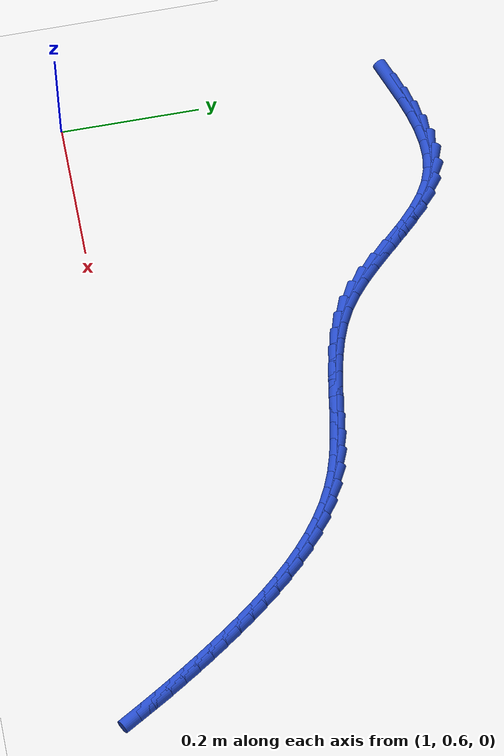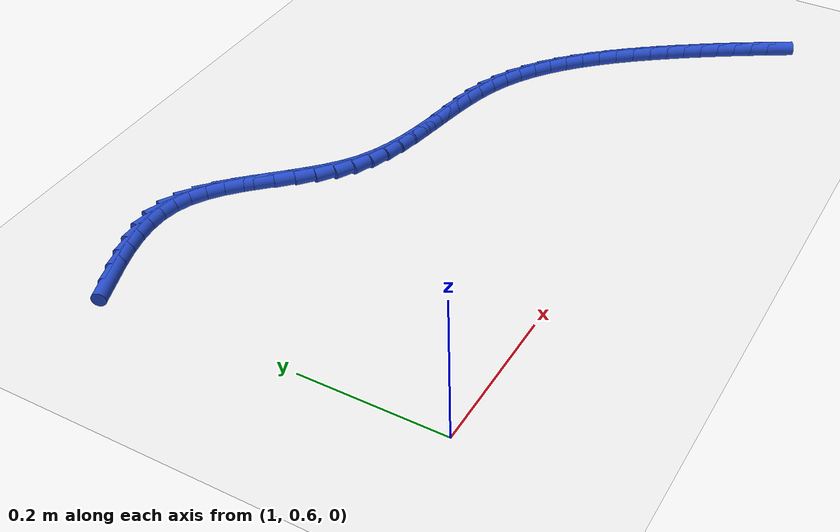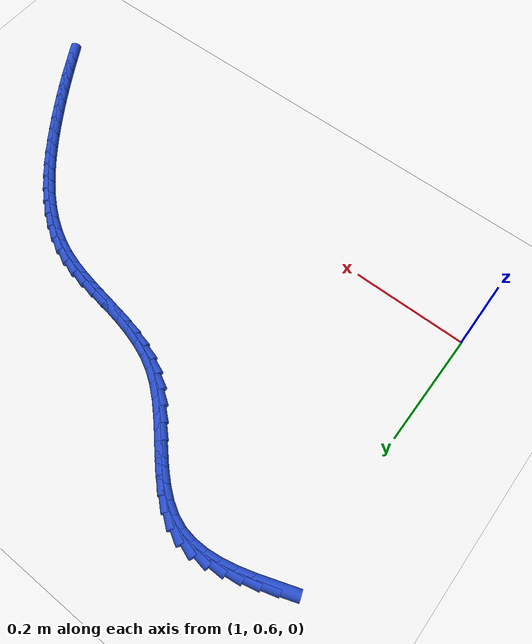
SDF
<sdf version="1.6">
 <world name="default">
  <model name="ground_plane">
   <static>1</static>
   <link name="link">
    <collision name="collision">
     <geometry><plane><normal>0 0 1</normal><size>100 100</size></plane></geometry>
     <surface><friction><ode><mu>100</mu><mu2>50</mu2></ode></friction></surface>
    </collision>
    <visual name="visual">
     <cast_shadows>0</cast_shadows>
     <geometry><plane><normal>0 0 1</normal><size>100 100</size></plane></geometry>
     <material>
      <script><uri>file://media/materials/scripts/gazebo.material</uri><name>Gazebo/WhiteGlow</name></script>
     </material>
    </visual>
   </link>
  </model>
  <model name="line">
   <link name="link_64">
    <pose>1.0182923211491122 1.0835292956726101 0.01 0 1.57 0.3456698950445351</pose>
    <collision name="collision">
     <geometry><cylinder><radius>0.01</radius><length>0.08</length></cylinder></geometry>
    </collision>
    <visual name="visual">
     <material>
      <script><name>Gazebo/Blue</name><uri>file://media/materials/scripts/gazebo.material</uri></script>
     </material>
     <geometry><cylinder><radius>0.01</radius><length>0.08</length></cylinder></geometry>
    </visual>
   </link>
   <link name="link_65">
    <pose>1.0442823852947185 1.0928890749901967 0.01 0 1.57 0.29696353346140586</pose>
    <collision name="collision">
     <geometry><cylinder><radius>0.01</radius><length>0.08</length></cylinder></geometry>
    </collision>
    <visual name="visual">
     <material>
      <script><name>Gazebo/Blue</name><uri>file://media/materials/scripts/gazebo.material</uri></script>
     </material>
     <geometry><cylinder><radius>0.01</radius><length>0.08</length></cylinder></geometry>
    </visual>
   </link>
   <link name="link_66">
    <pose>1.0700428076078006 1.1007720820701667 0.01 0 1.57 0.22657564463094484</pose>
    <collision name="collision">
     <geometry><cylinder><radius>0.01</radius><length>0.08</length></cylinder></geometry>
    </collision>
    <visual name="visual">
     <material>
      <script><name>Gazebo/Blue</name><uri>file://media/materials/scripts/gazebo.material</uri></script>
     </material>
     <geometry><cylinder><radius>0.01</radius><length>0.08</length></cylinder></geometry>
    </visual>
   </link>
   <link name="link_67">
    <pose>1.0953525608180354 1.1066068445860413 0.01 0 1.57 0.12975785164470752</pose>
    <collision name="collision">
     <geometry><cylinder><radius>0.01</radius><length>0.08</length></cylinder></geometry>
    </collision>
    <visual name="visual">
     <material>
      <script><name>Gazebo/Blue</name><uri>file://media/materials/scripts/gazebo.material</uri></script>
     </material>
     <geometry><cylinder><radius>0.01</radius><length>0.08</length></cylinder></geometry>
    </visual>
   </link>
   <link name="link_68">
    <pose>1.1199906176551 1.1098218902113446 0.01 0 1.57 0.001004677425764139</pose>
    <collision name="collision">
     <geometry><cylinder><radius>0.01</radius><length>0.08</length></cylinder></geometry>
    </collision>
    <visual name="visual">
     <material>
      <script><name>Gazebo/Blue</name><uri>file://media/materials/scripts/gazebo.material</uri></script>
     </material>
     <geometry><cylinder><radius>0.01</radius><length>0.08</length></cylinder></geometry>
    </visual>
   </link>
   <link name="link_69">
    <pose>1.1437359508486715 1.1098457466195981 0.01 0 1.57 -0.16372422563406325</pose>
    <collision name="collision">
     <geometry><cylinder><radius>0.01</radius><length>0.08</length></cylinder></geometry>
    </collision>
    <visual name="visual">
     <material>
      <script><name>Gazebo/Blue</name><uri>file://media/materials/scripts/gazebo.material</uri></script>
     </material>
     <geometry><cylinder><radius>0.01</radius><length>0.08</length></cylinder></geometry>
    </visual>
   </link>
   <link name="link_70">
    <pose>1.1663675331284278 1.1061069414843239 0.01 0 1.57 -0.35898097212196867</pose>
    <collision name="collision">
     <geometry><cylinder><radius>0.01</radius><length>0.08</length></cylinder></geometry>
    </collision>
    <visual name="visual">
     <material>
      <script><name>Gazebo/Blue</name><uri>file://media/materials/scripts/gazebo.material</uri></script>
     </material>
     <geometry><cylinder><radius>0.01</radius><length>0.08</length></cylinder></geometry>
    </visual>
   </link>
   <link name="link_71">
    <pose>1.1876910863482864 1.098105493624344 0.01 0 1.57 -0.5365407657694464</pose>
    <collision name="collision">
     <geometry><cylinder><radius>0.01</radius><length>0.08</length></cylinder></geometry>
    </collision>
    <visual name="visual">
     <material>
      <script><name>Gazebo/Blue</name><uri>file://media/materials/scripts/gazebo.material</uri></script>
     </material>
     <geometry><cylinder><radius>0.01</radius><length>0.08</length></cylinder></geometry>
    </visual>
   </link>
   <link name="link_72">
    <pose>1.2078109316426904 1.086139474323957 0.01 0 1.57 -0.667300120723335</pose>
    <collision name="collision">
     <geometry><cylinder><radius>0.01</radius><length>0.08</length></cylinder></geometry>
    </collision>
    <visual name="visual">
     <material>
      <script><name>Gazebo/Blue</name><uri>file://media/materials/scripts/gazebo.material</uri></script>
     </material>
     <geometry><cylinder><radius>0.01</radius><length>0.08</length></cylinder></geometry>
    </visual>
   </link>
   <link name="link_73">
    <pose>1.2270183240638377 1.0710065644903806 0.01 0 1.57 -0.7550719745141673</pose>
    <collision name="collision">
     <geometry><cylinder><radius>0.01</radius><length>0.08</length></cylinder></geometry>
    </collision>
    <visual name="visual">
     <material>
      <script><name>Gazebo/Blue</name><uri>file://media/materials/scripts/gazebo.material</uri></script>
     </material>
     <geometry><cylinder><radius>0.01</radius><length>0.08</length></cylinder></geometry>
    </visual>
   </link>
   <link name="link_74">
    <pose>1.2456073874216205 1.0535121122266344 0.01 0 1.57 -0.8064530137730368</pose>
    <collision name="collision">
     <geometry><cylinder><radius>0.01</radius><length>0.08</length></cylinder></geometry>
    </collision>
    <visual name="visual">
     <material>
      <script><name>Gazebo/Blue</name><uri>file://media/materials/scripts/gazebo.material</uri></script>
     </material>
     <geometry><cylinder><radius>0.01</radius><length>0.08</length></cylinder></geometry>
    </visual>
   </link>
   <link name="link_75">
    <pose>1.2638722455259312 1.034461465635738 0.01 0 1.57 -0.8265649506673421</pose>
    <collision name="collision">
     <geometry><cylinder><radius>0.01</radius><length>0.08</length></cylinder></geometry>
    </collision>
    <visual name="visual">
     <material>
      <script><name>Gazebo/Blue</name><uri>file://media/materials/scripts/gazebo.material</uri></script>
     </material>
     <geometry><cylinder><radius>0.01</radius><length>0.08</length></cylinder></geometry>
    </visual>
   </link>
   <link name="link_76">
    <pose>1.2821070221866606 1.0146599728207117 0.01 0 1.57 -0.8180221046899048</pose>
    <collision name="collision">
     <geometry><cylinder><radius>0.01</radius><length>0.08</length></cylinder></geometry>
    </collision>
    <visual name="visual">
     <material>
      <script><name>Gazebo/Blue</name><uri>file://media/materials/scripts/gazebo.material</uri></script>
     </material>
     <geometry><cylinder><radius>0.01</radius><length>0.08</length></cylinder></geometry>
    </visual>
   </link>
   <link name="link_77">
    <pose>1.3006058412137014 0.9949129818845748 0.01 0 1.57 -0.780922026195444</pose>
    <collision name="collision">
     <geometry><cylinder><radius>0.01</radius><length>0.08</length></cylinder></geometry>
    </collision>
    <visual name="visual">
     <material>
      <script><name>Gazebo/Blue</name><uri>file://media/materials/scripts/gazebo.material</uri></script>
     </material>
     <geometry><cylinder><radius>0.01</radius><length>0.08</length></cylinder></geometry>
    </visual>
   </link>
   <link name="link_78">
    <pose>1.3196628264169445 0.9760258409303462 0.01 0 1.57 -0.713150198434638</pose>
    <collision name="collision">
     <geometry><cylinder><radius>0.01</radius><length>0.08</length></cylinder></geometry>
    </collision>
    <visual name="visual">
     <material>
      <script><name>Gazebo/Blue</name><uri>file://media/materials/scripts/gazebo.material</uri></script>
     </material>
     <geometry><cylinder><radius>0.01</radius><length>0.08</length></cylinder></geometry>
    </visual>
   </link>
   <link name="link_79">
    <pose>1.3395721016062816 0.9588038980610462 0.01 0 1.57 -0.6111772853399418</pose>
    <collision name="collision">
     <geometry><cylinder><radius>0.01</radius><length>0.08</length></cylinder></geometry>
    </collision>
    <visual name="visual">
     <material>
      <script><name>Gazebo/Blue</name><uri>file://media/materials/scripts/gazebo.material</uri></script>
     </material>
     <geometry><cylinder><radius>0.01</radius><length>0.08</length></cylinder></geometry>
    </visual>
   </link>
   <link name="link_80">
    <pose>1.3606272464097968 0.9440511333073831 0.01 0 1.57 -0.4871068397696455</pose>
    <collision name="collision">
     <geometry><cylinder><radius>0.01</radius><length>0.08</length></cylinder></geometry>
    </collision>
    <visual name="visual">
     <material>
      <script><name>Gazebo/Blue</name><uri>file://media/materials/scripts/gazebo.material</uri></script>
     </material>
     <geometry><cylinder><radius>0.01</radius><length>0.08</length></cylinder></geometry>
    </visual>
   </link>
   <link name="link_81">
    <pose>1.3829788305830284 0.9322120000791534 0.01 0 1.57 -0.37809624471242004</pose>
    <collision name="collision">
     <geometry><cylinder><radius>0.01</radius><length>0.08</length></cylinder></geometry>
    </collision>
    <visual name="visual">
     <material>
      <script><name>Gazebo/Blue</name><uri>file://media/materials/scripts/gazebo.material</uri></script>
     </material>
     <geometry><cylinder><radius>0.01</radius><length>0.08</length></cylinder></geometry>
    </visual>
   </link>
   <link name="link_82">
    <pose>1.4064435697575333 0.9228916429822384 0.01 0 1.57 -0.29190421848029113</pose>
    <collision name="collision">
     <geometry><cylinder><radius>0.01</radius><length>0.08</length></cylinder></geometry>
    </collision>
    <visual name="visual">
     <material>
      <script><name>Gazebo/Blue</name><uri>file://media/materials/scripts/gazebo.material</uri></script>
     </material>
     <geometry><cylinder><radius>0.01</radius><length>0.08</length></cylinder></geometry>
    </visual>
   </link>
   <link name="link_83">
    <pose>1.4307906237330439 0.9155756513273754 0.01 0 1.57 -0.2289681380171263</pose>
    <collision name="collision">
     <geometry><cylinder><radius>0.01</radius><length>0.08</length></cylinder></geometry>
    </collision>
    <visual name="visual">
     <material>
      <script><name>Gazebo/Blue</name><uri>file://media/materials/scripts/gazebo.material</uri></script>
     </material>
     <geometry><cylinder><radius>0.01</radius><length>0.08</length></cylinder></geometry>
    </visual>
   </link>
   <link name="link_84">
    <pose>1.455789152309292 0.9097496144253019 0.01 0 1.57 -0.18855356647041593</pose>
    <collision name="collision">
     <geometry><cylinder><radius>0.01</radius><length>0.08</length></cylinder></geometry>
    </collision>
    <visual name="visual">
     <material>
      <script><name>Gazebo/Blue</name><uri>file://media/materials/scripts/gazebo.material</uri></script>
     </material>
     <geometry><cylinder><radius>0.01</radius><length>0.08</length></cylinder></geometry>
    </visual>
   </link>
   <link name="link_85">
    <pose>1.4812083152860103 0.9048991215867547 0.01 0 1.57 -0.169749918881052</pose>
    <collision name="collision">
     <geometry><cylinder><radius>0.01</radius><length>0.08</length></cylinder></geometry>
    </collision>
    <visual name="visual">
     <material>
      <script><name>Gazebo/Blue</name><uri>file://media/materials/scripts/gazebo.material</uri></script>
     </material>
     <geometry><cylinder><radius>0.01</radius><length>0.08</length></cylinder></geometry>
    </visual>
   </link>
   <link name="link_86">
    <pose>1.5068172724629305 0.900509762122471 0.01 0 1.57 -0.17204060999843704</pose>
    <collision name="collision">
     <geometry><cylinder><radius>0.01</radius><length>0.08</length></cylinder></geometry>
    </collision>
    <visual name="visual">
     <material>
      <script><name>Gazebo/Blue</name><uri>file://media/materials/scripts/gazebo.material</uri></script>
     </material>
     <geometry><cylinder><radius>0.01</radius><length>0.08</length></cylinder></geometry>
    </visual>
   </link>
   <link name="link_87">
    <pose>1.5323851836397844 0.8960671253431879 0.01 0 1.57 -0.19553686381555058</pose>
    <collision name="collision">
     <geometry><cylinder><radius>0.01</radius><length>0.08</length></cylinder></geometry>
    </collision>
    <visual name="visual">
     <material>
      <script><name>Gazebo/Blue</name><uri>file://media/materials/scripts/gazebo.material</uri></script>
     </material>
     <geometry><cylinder><radius>0.01</radius><length>0.08</length></cylinder></geometry>
    </visual>
   </link>
   <link name="link_88">
    <pose>1.5576812086163045 0.8910568005596429 0.01 0 1.57 -0.2409545345462108</pose>
    <collision name="collision">
     <geometry><cylinder><radius>0.01</radius><length>0.08</length></cylinder></geometry>
    </collision>
    <visual name="visual">
     <material>
      <script><name>Gazebo/Blue</name><uri>file://media/materials/scripts/gazebo.material</uri></script>
     </material>
     <geometry><cylinder><radius>0.01</radius><length>0.08</length></cylinder></geometry>
    </visual>
   </link>
   <link name="link_89">
    <pose>1.5824745071922228 0.8849643770825726 0.01 0 1.57 -0.3093190343416121</pose>
    <collision name="collision">
     <geometry><cylinder><radius>0.01</radius><length>0.08</length></cylinder></geometry>
    </collision>
    <visual name="visual">
     <material>
      <script><name>Gazebo/Blue</name><uri>file://media/materials/scripts/gazebo.material</uri></script>
     </material>
     <geometry><cylinder><radius>0.01</radius><length>0.08</length></cylinder></geometry>
    </visual>
   </link>
   <link name="link_90">
    <pose>1.6065342391672721 0.8772754442227145 0.01 0 1.57 -0.39929111975875553</pose>
    <collision name="collision">
     <geometry><cylinder><radius>0.01</radius><length>0.08</length></cylinder></geometry>
    </collision>
    <visual name="visual">
     <material>
      <script><name>Gazebo/Blue</name><uri>file://media/materials/scripts/gazebo.material</uri></script>
     </material>
     <geometry><cylinder><radius>0.01</radius><length>0.08</length></cylinder></geometry>
    </visual>
   </link>
   <link name="link_91">
    <pose>1.6296474536855865 0.8675226413756384 0.01 0 1.57 -0.49165487036444444</pose>
    <collision name="collision">
     <geometry><cylinder><radius>0.01</radius><length>0.08</length></cylinder></geometry>
    </collision>
    <visual name="visual">
     <material>
      <script><name>Gazebo/Blue</name><uri>file://media/materials/scripts/gazebo.material</uri></script>
     </material>
     <geometry><cylinder><radius>0.01</radius><length>0.08</length></cylinder></geometry>
    </visual>
   </link>
   <link name="link_92">
    <pose>1.6517678226846912 0.8556768362133359 0.01 0 1.57 -0.575305879913949</pose>
    <collision name="collision">
     <geometry><cylinder><radius>0.01</radius><length>0.08</length></cylinder></geometry>
    </collision>
    <visual name="visual">
     <material>
      <script><name>Gazebo/Blue</name><uri>file://media/materials/scripts/gazebo.material</uri></script>
     </material>
     <geometry><cylinder><radius>0.01</radius><length>0.08</length></cylinder></geometry>
    </visual>
   </link>
   <link name="link_93">
    <pose>1.6729396705687607 0.8419473180150997 0.01 0 1.57 -0.649790764161096</pose>
    <collision name="collision">
     <geometry><cylinder><radius>0.01</radius><length>0.08</length></cylinder></geometry>
    </collision>
    <visual name="visual">
     <material>
      <script><name>Gazebo/Blue</name><uri>file://media/materials/scripts/gazebo.material</uri></script>
     </material>
     <geometry><cylinder><radius>0.01</radius><length>0.08</length></cylinder></geometry>
    </visual>
   </link>
   <link name="link_94">
    <pose>1.6932082287751802 0.8265457616138042 0.01 0 1.57 -0.7152512399855727</pose>
    <collision name="collision">
     <geometry><cylinder><radius>0.01</radius><length>0.08</length></cylinder></geometry>
    </collision>
    <visual name="visual">
     <material>
      <script><name>Gazebo/Blue</name><uri>file://media/materials/scripts/gazebo.material</uri></script>
     </material>
     <geometry><cylinder><radius>0.01</radius><length>0.08</length></cylinder></geometry>
    </visual>
   </link>
   <link name="link_95">
    <pose>1.7126187287413377 0.8096838418423248 0.01 0 1.57 -0.7721304141384576</pose>
    <collision name="collision">
     <geometry><cylinder><radius>0.01</radius><length>0.08</length></cylinder></geometry>
    </collision>
    <visual name="visual">
     <material>
      <script><name>Gazebo/Blue</name><uri>file://media/materials/scripts/gazebo.material</uri></script>
     </material>
     <geometry><cylinder><radius>0.01</radius><length>0.08</length></cylinder></geometry>
    </visual>
   </link>
   <link name="link_96">
    <pose>1.7312164019046188 0.7915732335335358 0.01 0 1.57 -0.8210138745614127</pose>
    <collision name="collision">
     <geometry><cylinder><radius>0.01</radius><length>0.08</length></cylinder></geometry>
    </collision>
    <visual name="visual">
     <material>
      <script><name>Gazebo/Blue</name><uri>file://media/materials/scripts/gazebo.material</uri></script>
     </material>
     <geometry><cylinder><radius>0.01</radius><length>0.08</length></cylinder></geometry>
    </visual>
   </link>
   <link name="link_97">
    <pose>1.7490464797024114 0.7724256115203122 0.01 0 1.57 -0.8625155518658167</pose>
    <collision name="collision">
     <geometry><cylinder><radius>0.01</radius><length>0.08</length></cylinder></geometry>
    </collision>
    <visual name="visual">
     <material>
      <script><name>Gazebo/Blue</name><uri>file://media/materials/scripts/gazebo.material</uri></script>
     </material>
     <geometry><cylinder><radius>0.01</radius><length>0.08</length></cylinder></geometry>
    </visual>
   </link>
   <link name="link_98">
    <pose>1.7661541935721023 0.7524526506355289 0.01 0 1.57 -0.897203243794486</pose>
    <collision name="collision">
     <geometry><cylinder><radius>0.01</radius><length>0.08</length></cylinder></geometry>
    </collision>
    <visual name="visual">
     <material>
      <script><name>Gazebo/Blue</name><uri>file://media/materials/scripts/gazebo.material</uri></script>
     </material>
     <geometry><cylinder><radius>0.01</radius><length>0.08</length></cylinder></geometry>
    </visual>
   </link>
   <link name="link_99">
    <pose>1.7825847749510786 0.7318660257120603 0.01 0 1.57 -0.9255527146425474</pose>
    <collision name="collision">
     <geometry><cylinder><radius>0.01</radius><length>0.08</length></cylinder></geometry>
    </collision>
    <visual name="visual">
     <material>
      <script><name>Gazebo/Blue</name><uri>file://media/materials/scripts/gazebo.material</uri></script>
     </material>
     <geometry><cylinder><radius>0.01</radius><length>0.08</length></cylinder></geometry>
    </visual>
   </link>
   <link name="link_100">
    <pose>1.7983834552767248 0.7108774115827813 0.01 0 1.57 -0.9479191428712754</pose>
    <collision name="collision">
     <geometry><cylinder><radius>0.01</radius><length>0.08</length></cylinder></geometry>
    </collision>
    <visual name="visual">
     <material>
      <script><name>Gazebo/Blue</name><uri>file://media/materials/scripts/gazebo.material</uri></script>
     </material>
     <geometry><cylinder><radius>0.01</radius><length>0.08</length></cylinder></geometry>
    </visual>
   </link>
   <link name="link_101">
    <pose>1.8135954660955884 0.6896984818393068 0.01 0 1.57 -0.965414999334076</pose>
    <collision name="collision">
     <geometry><cylinder><radius>0.01</radius><length>0.08</length></cylinder></geometry>
    </collision>
    <visual name="visual">
     <material>
      <script><name>Gazebo/Blue</name><uri>file://media/materials/scripts/gazebo.material</uri></script>
     </material>
     <geometry><cylinder><radius>0.01</radius><length>0.08</length></cylinder></geometry>
    </visual>
   </link>
   <link name="link_102">
    <pose>1.8282701344845738 0.6684943390138355 0.01 0 1.57 -0.9813113277625304</pose>
    <collision name="collision">
     <geometry><cylinder><radius>0.01</radius><length>0.08</length></cylinder></geometry>
    </collision>
    <visual name="visual">
     <material>
      <script><name>Gazebo/Blue</name><uri>file://media/materials/scripts/gazebo.material</uri></script>
     </material>
     <geometry><cylinder><radius>0.01</radius><length>0.08</length></cylinder></geometry>
    </visual>
   </link>
   <link name="link_103">
    <pose>1.8424717257085865 0.6472602206443223 0.01 0 1.57 -0.9961961206549482</pose>
    <collision name="collision">
     <geometry><cylinder><radius>0.01</radius><length>0.08</length></cylinder></geometry>
    </collision>
    <visual name="visual">
     <material>
      <script><name>Gazebo/Blue</name><uri>file://media/materials/scripts/gazebo.material</uri></script>
     </material>
     <geometry><cylinder><radius>0.01</radius><length>0.08</length></cylinder></geometry>
    </visual>
   </link>
   <link name="link_104">
    <pose>1.856267909903534 0.625952646829038 0.01 0 1.57 -1.0099135663444858</pose>
    <collision name="collision">
     <geometry><cylinder><radius>0.01</radius><length>0.08</length></cylinder></geometry>
    </collision>
    <visual name="visual">
     <material>
      <script><name>Gazebo/Blue</name><uri>file://media/materials/scripts/gazebo.material</uri></script>
     </material>
     <geometry><cylinder><radius>0.01</radius><length>0.08</length></cylinder></geometry>
    </visual>
   </link>
   <link name="link_105">
    <pose>1.8697263572053229 0.6045281376662536 0.01 0 1.57 -1.02232810624724</pose>
    <collision name="collision">
     <geometry><cylinder><radius>0.01</radius><length>0.08</length></cylinder></geometry>
    </collision>
    <visual name="visual">
     <material>
      <script><name>Gazebo/Blue</name><uri>file://media/materials/scripts/gazebo.material</uri></script>
     </material>
     <geometry><cylinder><radius>0.01</radius><length>0.08</length></cylinder></geometry>
    </visual>
   </link>
   <link name="link_106">
    <pose>1.8829147377498603 0.58294321325424 0.01 0 1.57 -1.0334412063534208</pose>
    <collision name="collision">
     <geometry><cylinder><radius>0.01</radius><length>0.08</length></cylinder></geometry>
    </collision>
    <visual name="visual">
     <material>
      <script><name>Gazebo/Blue</name><uri>file://media/materials/scripts/gazebo.material</uri></script>
     </material>
     <geometry><cylinder><radius>0.01</radius><length>0.08</length></cylinder></geometry>
    </visual>
   </link>
   <link name="link_107">
    <pose>1.8958961724040708 0.5611564367136131 0.01 0 1.57 -1.0446485580354967</pose>
    <collision name="collision">
     <geometry><cylinder><radius>0.01</radius><length>0.08</length></cylinder></geometry>
    </collision>
    <visual name="visual">
     <material>
      <script><name>Gazebo/Blue</name><uri>file://media/materials/scripts/gazebo.material</uri></script>
     </material>
     <geometry><cylinder><radius>0.01</radius><length>0.08</length></cylinder></geometry>
    </visual>
   </link>
  </model>
 </world>
</sdf>
